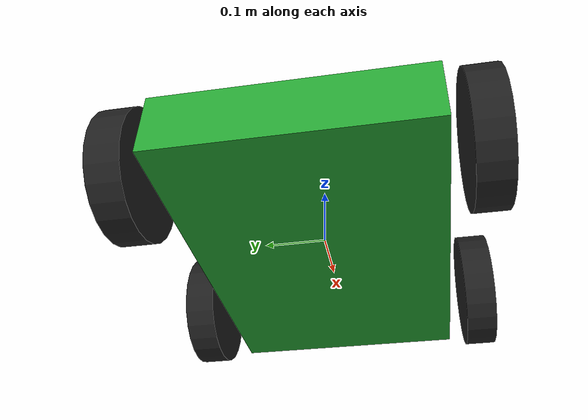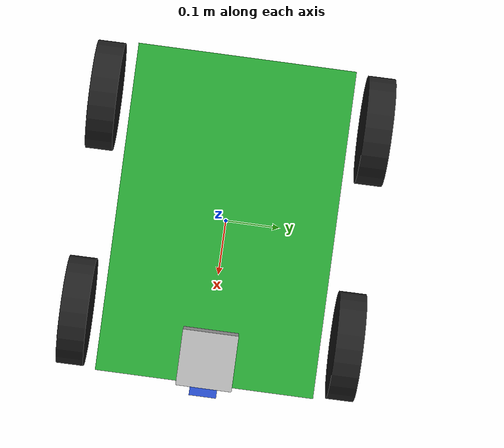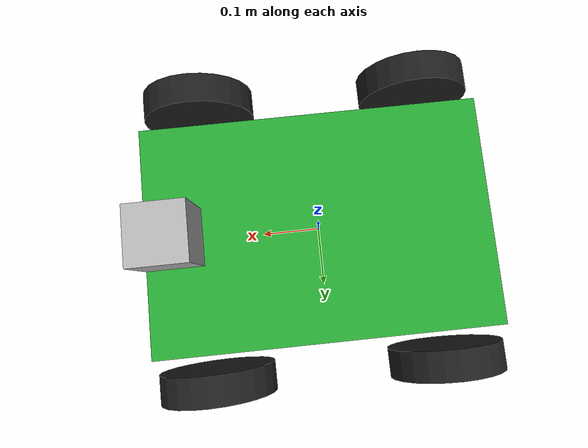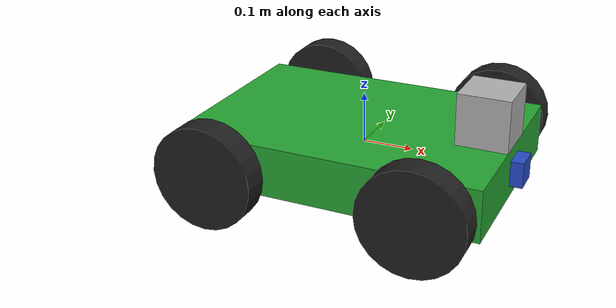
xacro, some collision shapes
<?xml version='1.0'?>

<robot name="my_robot" xmlns:xacro="http://www.ros.org/wiki/xacro">

  <xacro:include filename="$(find my_robot)/urdf/my_robot.gazebo" />

  <link name="robot_footprint"></link>

  <joint name="robot_footprint_joint" type="fixed">
    <origin xyz="0 0 0" rpy="0 0 0" />
    <parent link="robot_footprint"/>
    <child link="chassis" />
  </joint>

  <link name='chassis'>
    <pose>0 0 0.1 0 0 0</pose>

    <inertial>
      <mass value="20.0"/>
      <origin xyz="0.0 0 0" rpy=" 0 0 0"/>
      <inertia
          ixx="0.1" ixy="0" ixz="0"
          iyy="0.1" iyz="0"
          izz="0.1"
      />
    </inertial>

    <collision name='collision'>
      <origin xyz="0 0 0" rpy=" 0 0 0"/>
      <geometry>
        <box size=".6 .4 .1"/>
      </geometry>
    </collision>

    <visual name='chassis_visual'>
      <origin xyz="0 0 0" rpy=" 0 0 0"/>
      <geometry>
        <box size=".6 .4 .1"/>
      </geometry>
    </visual>

  </link>

  <link name='left_front_wheel'>
    <pose>0 0 0.2 0 0 0</pose>
    <inertial>
      <mass value="5.0"/>
      <origin xyz="0.0 0 0" rpy=" 0 1.5757 1.5757"/>
      <inertia
          ixx="0.1" ixy="0" ixz="0"
          iyy="0.1" iyz="0"
          izz="0.1"
      />
    </inertial>
    <collision name='collision'>
      <origin xyz="0 0 0" rpy=" 0 1.5757 1.5757"/>
      <geometry>
        <cylinder radius="0.1" length="0.05"/>
      </geometry>
    </collision>
    <visual name='left_front_wheel_visual'>
      <origin xyz="0 0 0" rpy=" 0 1.5757 1.5757"/>
      <geometry>
        <cylinder radius="0.1" length="0.05"/>
      </geometry>
    </visual>
  </link>

  <link name='right_front_wheel'>
    <pose>0 0 0.2 0 0 0</pose>
    <inertial>
      <mass value="5.0"/>
      <origin xyz="0.0 0 0" rpy=" 0 1.5757 1.5757"/>
      <inertia
          ixx="0.1" ixy="0" ixz="0"
          iyy="0.1" iyz="0"
          izz="0.1"
      />
    </inertial>
    <collision name='collision'>
      <origin xyz="0 0 0" rpy=" 0 1.5757 1.5757"/>
      <geometry>
        <cylinder radius="0.1" length="0.05"/>
      </geometry>
    </collision>
    <visual name='right_front_wheel_visual'>
      <origin xyz="0 0 0" rpy=" 0 1.5757 1.5757"/>
      <geometry>
        <cylinder radius="0.1" length="0.05"/>
      </geometry>
    </visual>
  </link>

  <link name='left_back_wheel'>
    <pose>0 0 0.2 0 0 0</pose>
    <inertial>
      <mass value="5.0"/>
      <origin xyz="0.0 0 0" rpy=" 0 1.5757 1.5757"/>
      <inertia
          ixx="0.1" ixy="0" ixz="0"
          iyy="0.1" iyz="0"
          izz="0.1"
      />
    </inertial>
    <collision name='collision'>
      <origin xyz="0 0 0" rpy=" 0 1.5757 1.5757"/>
      <geometry>
        <cylinder radius="0.1" length="0.05"/>
      </geometry>
    </collision>
    <visual name='left_back_wheel_visual'>
      <origin xyz="0 0 0" rpy=" 0 1.5757 1.5757"/>
      <geometry>
        <cylinder radius="0.1" length="0.05"/>
      </geometry>
    </visual>
  </link>

  <link name='right_back_wheel'>
    <pose>0 0 0.2 0 0 0</pose>
    <inertial>
      <mass value="5.0"/>
      <origin xyz="0.0 0 0" rpy=" 0 1.5757 1.5757"/>
      <inertia
          ixx="0.1" ixy="0" ixz="0"
          iyy="0.1" iyz="0"
          izz="0.1"
      />
    </inertial>
    <collision name='collision'>
      <origin xyz="0 0 0" rpy=" 0 1.5757 1.5757"/>
      <geometry>
        <cylinder radius="0.1" length="0.05"/>
      </geometry>
    </collision>
    <visual name='right_back_wheel_visual'>
      <origin xyz="0 0 0" rpy=" 0 1.5757 1.5757"/>
      <geometry>
        <cylinder radius="0.1" length="0.05"/>
      </geometry>
    </visual>
  </link>

  <joint type="continuous" name="left_front_wheel_hinge">
    <origin xyz="0.2 0.25 0" rpy="0 0 0"/>
    <child link="left_front_wheel"/>
    <parent link="chassis"/>
    <axis xyz="0 1 0" rpy="0 0 0"/>
    <limit effort="10000" velocity="1000"/>
    <dynamics damping="1.0" friction="1.0"/>
  </joint>

  <joint type="continuous" name="right_front_wheel_hinge">
    <origin xyz="0.2 -0.25 0" rpy="0 0 0"/>
    <child link="right_front_wheel"/>
    <parent link="chassis"/>
    <axis xyz="0 1 0" rpy="0 0 0"/>
    <limit effort="10000" velocity="1000"/>
    <dynamics damping="1.0" friction="1.0"/>
  </joint>

  <joint type="continuous" name="left_back_wheel_hinge">
    <origin xyz="-0.2 0.25 0" rpy="0 0 0"/>
    <child link="left_back_wheel"/>
    <parent link="chassis"/>
    <axis xyz="0 1 0" rpy="0 0 0"/>
    <limit effort="10000" velocity="1000"/>
    <dynamics damping="1.0" friction="1.0"/>
  </joint>

  <joint type="continuous" name="right_back_wheel_hinge">
    <origin xyz="-0.2 -0.25 0" rpy="0 0 0"/>
    <child link="right_back_wheel"/>
    <parent link="chassis"/>
    <axis xyz="0 1 0" rpy="0 0 0"/>
    <limit effort="10000" velocity="1000"/>
    <dynamics damping="1.0" friction="1.0"/>
  </joint>

  <link name='camera'>
    <pose>0 0 0.1 0 0 0</pose>

    <inertial>
      <mass value="0.1"/>
      <origin xyz="0.0 0 0" rpy=" 0 0 0"/>
      <box_inertia  m="0.1" x="0.05" y="0.05" z="0.05"/>
      <inertia
          ixx="1e-6" ixy="0" ixz="0"
          iyy="1e-6" iyz="0"
          izz="1e-6"
      />
    </inertial>

    <collision name='collision'>
      <origin xyz="0 0 0" rpy=" 0 0 0"/>
      <geometry>
        <box size="0.05 0.05 0.05"/>
      </geometry>
    </collision>

    <visual name='camera_visual'>
      <origin xyz="0 0 0" rpy=" 0 0 0"/>
      <geometry>
        <box size="0.05 0.05 0.05"/>
      </geometry>
    </visual>
  </link>

  <joint type="fixed" name="camera_joint">
    <origin xyz="0.3 0 0" rpy="0 0 0"/>
    <child link="camera"/>
    <parent link="chassis"/>
    <axis xyz="0 1 0" rpy="0 0 0"/>
    <limit effort="10000" velocity="1000"/>
    <dynamics damping="1.0" friction="1.0"/>
  </joint>

  <link name='hokuyo'>
    <pose>0 0 0.1 0 0 0</pose>

    <inertial>
      <mass value="1e-5"/>
      <origin xyz="0.0 0 0" rpy=" 0 0 0"/>
      <inertia
          ixx="1e-6" ixy="0" ixz="0"
          iyy="1e-6" iyz="0"
          izz="1e-6"
      />
    </inertial>

    <collision name='collision'>
      <origin xyz="0 0 0" rpy=" 0 0 0"/>
      <geometry>
        <box size="0.1 0.1 0.1"/>
      </geometry>
    </collision>

    <visual name='hokuyo_visual'>
      <origin xyz="0 0 0" rpy=" 0 0 0"/>
      <geometry>
        <mesh filename="package://my_robot/meshes/hokuyo.dae"/>
      </geometry>
    </visual>
  </link>

  <joint type="fixed" name="hokuyo_joint">
    <origin xyz="0.25 0 0.1" rpy="0 0 0"/>
    <child link="hokuyo"/>
    <parent link="chassis"/>
    <axis xyz="0 1 0" rpy="0 0 0"/>
    <limit effort="10000" velocity="1000"/>
    <dynamics damping="1.0" friction="1.0"/>
  </joint>

  <gazebo reference="left_front_wheel">
    <material>Gazebo/Black</material>
  </gazebo>

  <gazebo reference="right_front_wheel">
    <material>Gazebo/Black</material>
  </gazebo>

  <gazebo reference="right_back_wheel">
    <material>Gazebo/Black</material>
  </gazebo>

  <gazebo reference="left_back_wheel">
    <material>Gazebo/Black</material>
  </gazebo>

  <gazebo reference="chassis">
    <material>Gazebo/Green</material>
  </gazebo>

  <gazebo reference="camera">
    <material>Gazebo/Blue</material>
  </gazebo>

</robot>
